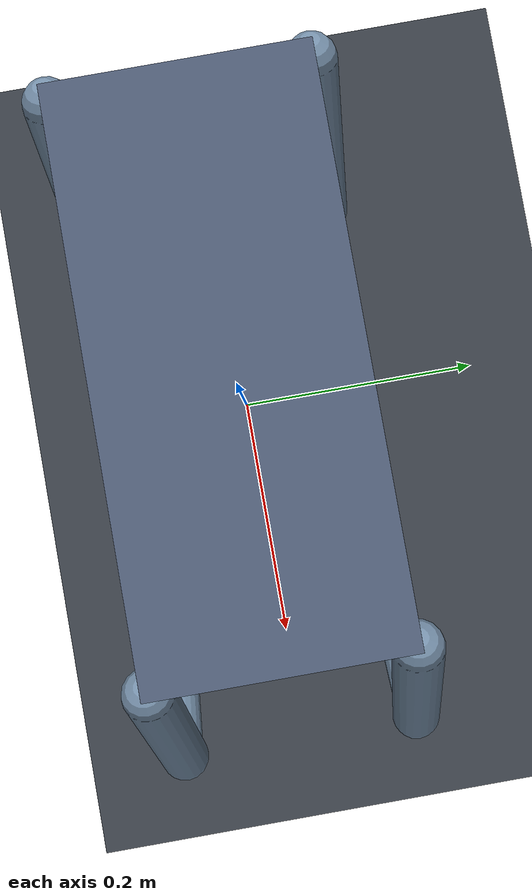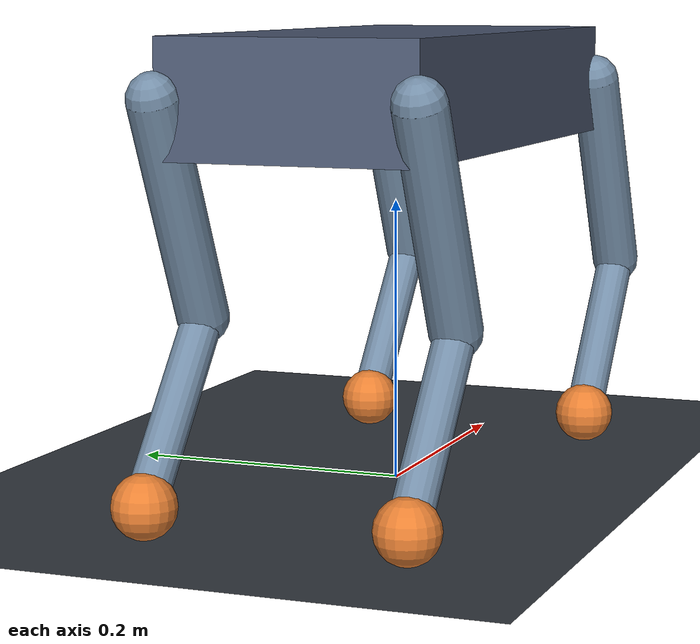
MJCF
<mujoco model="quadruped">
  <!-- 一个最小的四足机器人：躯干 + 4 条腿，每条腿 2 个关节（大腿 pitch + 小腿 pitch）共 8 个执行器 -->
  <compiler angle="degree" autolimits="true"/>

  <!-- timestep 小一点 + implicitfast 积分器，四足接触多、更稳 -->
  <option timestep="0.002" integrator="implicitfast" iterations="50"/>

  <default>
    <!-- 关节默认：阻尼 + 转动惯量补偿(friction loss)，能显著减少抖振 -->
    <joint damping="0.5" armature="0.01" frictionloss="0.05"/>
    <!-- 几何默认：摩擦、颜色、密度（1000 = 水的密度，MuJoCo 默认） -->
    <geom rgba=".45 .55 .65 1" friction="1.0 0.02 0.001" density="1000"/>
    <!-- 位置执行器默认参数（PD 中的 P 和 D） -->
    <position kp="40" kv="1.5" forcerange="-10 10"/>
  </default>

  <worldbody>
    <light pos="0 0 3" dir="0 0 -1" diffuse="1 1 1"/>
    <geom name="floor" type="plane" size="6 6 0.1" rgba=".22 .24 .27 1" friction="1.0 0.02 0.001"/>
    <camera name="track" pos="1.6 -1.6 0.9" xyaxes="0.7 0.7 0 -0.3 0.3 0.9" mode="trackcom"/>

    <!-- 浮基：free joint 让躯干有 6 个自由度（3 平移 + 3 旋转）。这是所有四足的关键 -->
    <body name="root" pos="0 0 0.28">
      <freejoint name="root"/>
      <site name="root_gyro" pos="0 0 0" size="0.01"/>
      <geom name="torso" type="box" size="0.20 0.09 0.04" mass="3" rgba=".3 .35 .45 1"/>

      <!-- ============ 左前腿 FL ============ -->
      <body name="FL_thigh" pos="0.20 0.09 0">
        <joint name="FL_thigh_j" type="hinge" axis="0 1 0" range="-60 60"/>
        <geom type="capsule" fromto="0 0 0  0.07 0 -0.15" size="0.018"/>
        <body name="FL_shin" pos="0.07 0 -0.15">
          <joint name="FL_knee_j" type="hinge" axis="0 1 0" range="-80 80"/>
          <geom type="capsule" fromto="0 0 0  -0.09 0 -0.11" size="0.014"/>
          <geom name="FL_foot" type="sphere" pos="-0.09 0 -0.11" size="0.022" rgba=".9 .5 .2 1"/>
        </body>
      </body>

      <!-- ============ 右前腿 FR ============ -->
      <body name="FR_thigh" pos="0.20 -0.09 0">
        <joint name="FR_thigh_j" type="hinge" axis="0 1 0" range="-60 60"/>
        <geom type="capsule" fromto="0 0 0  0.07 0 -0.15" size="0.018"/>
        <body name="FR_shin" pos="0.07 0 -0.15">
          <joint name="FR_knee_j" type="hinge" axis="0 1 0" range="-80 80"/>
          <geom type="capsule" fromto="0 0 0  -0.09 0 -0.11" size="0.014"/>
          <geom name="FR_foot" type="sphere" pos="-0.09 0 -0.11" size="0.022" rgba=".9 .5 .2 1"/>
        </body>
      </body>

      <!-- ============ 左后腿 RL ============ -->
      <body name="RL_thigh" pos="-0.20 0.09 0">
        <joint name="RL_thigh_j" type="hinge" axis="0 1 0" range="-60 60"/>
        <geom type="capsule" fromto="0 0 0  0.07 0 -0.15" size="0.018"/>
        <body name="RL_shin" pos="0.07 0 -0.15">
          <joint name="RL_knee_j" type="hinge" axis="0 1 0" range="-80 80"/>
          <geom type="capsule" fromto="0 0 0  -0.09 0 -0.11" size="0.014"/>
          <geom name="RL_foot" type="sphere" pos="-0.09 0 -0.11" size="0.022" rgba=".9 .5 .2 1"/>
        </body>
      </body>

      <!-- ============ 右后腿 RR ============ -->
      <body name="RR_thigh" pos="-0.20 -0.09 0">
        <joint name="RR_thigh_j" type="hinge" axis="0 1 0" range="-60 60"/>
        <geom type="capsule" fromto="0 0 0  0.07 0 -0.15" size="0.018"/>
        <body name="RR_shin" pos="0.07 0 -0.15">
          <joint name="RR_knee_j" type="hinge" axis="0 1 0" range="-80 80"/>
          <geom type="capsule" fromto="0 0 0  -0.09 0 -0.11" size="0.014"/>
          <geom name="RR_foot" type="sphere" pos="-0.09 0 -0.11" size="0.022" rgba=".9 .5 .2 1"/>
        </body>
      </body>
    </body>
  </worldbody>

  <!-- 8 个位置执行器：ctrl 是「目标关节角度」，单位是【弧度】（MuJoCo 内部一律弧度） -->
  <actuator>
    <position name="FL_thigh_a" joint="FL_thigh_j"/>
    <position name="FL_knee_a"  joint="FL_knee_j"/>
    <position name="FR_thigh_a" joint="FR_thigh_j"/>
    <position name="FR_knee_a"  joint="FR_knee_j"/>
    <position name="RL_thigh_a" joint="RL_thigh_j"/>
    <position name="RL_knee_a"  joint="RL_knee_j"/>
    <position name="RR_thigh_a" joint="RR_thigh_j"/>
    <position name="RR_knee_a"  joint="RR_knee_j"/>
  </actuator>

  <sensor>
    <jointpos joint="FL_thigh_j"/>
    <jointpos joint="FL_knee_j"/>
    <framepos objtype="body" objname="root"/>       <!-- 躯干世界坐标 (x,y,z) -->
    <framequat objtype="body" objname="root"/>      <!-- 躯干姿态四元数 (w,x,y,z) -->
    <gyro site="root_gyro"/>                        <!-- 躯干角速度 -->
  </sensor>
</mujoco>
